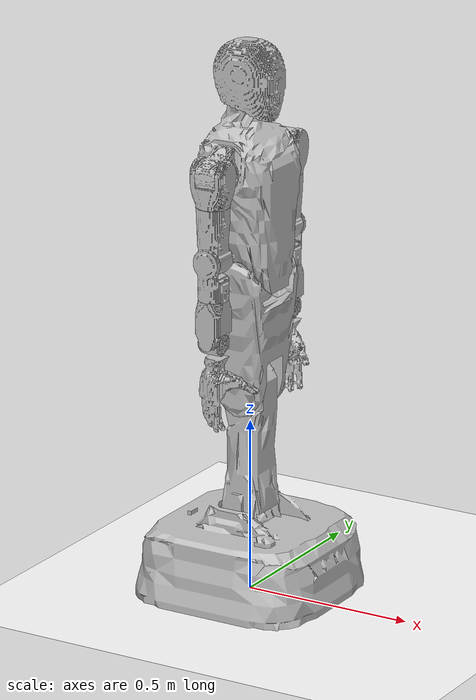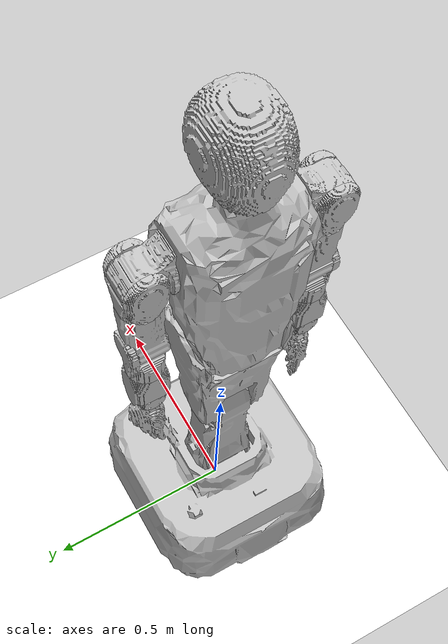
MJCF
<mujoco model="SR1_V1_0">
  <compiler angle="radian"/>

  <asset>
    <mesh name="mbase" content_type="model/stl" file="meshes/2/mbase.stl" scale="0.001 0.001 0.001"/>
    <mesh name="mfl1_hipr" content_type="model/stl" file="meshes/2/mfl1_hipr.stl" scale="0.001 0.001 0.001"/>
    <mesh name="mfr1_hipr" content_type="model/stl" file="meshes/2/mfr1_hipr.stl" scale="0.001 0.001 0.001"/>
    <mesh name="mrl1_hipr" content_type="model/stl" file="meshes/2/mrl1_hipr.stl" scale="0.001 0.001 0.001"/>
    <mesh name="mrr1_hipr" content_type="model/stl" file="meshes/2/mrr1_hipr.stl" scale="0.001 0.001 0.001"/>
    <mesh name="mwaist_base" content_type="model/stl" file="meshes/2/mwaist_base.stl" scale="0.001 0.001 0.001"/>
    <mesh name="mwb1_waistr" content_type="model/stl" file="meshes/2/mwb1_waistr.stl" scale="0.001 0.001 0.001"/>
    <mesh name="mwb2_waisty" content_type="model/stl" file="meshes/2/mwb2_waisty.stl" scale="0.001 0.001 0.001"/>
    <mesh name="mwb3_waistp" content_type="model/stl" file="meshes/2/mwb3_waistp.stl" scale="0.001 0.001 0.001"/>
    <mesh name="mal0_base" content_type="model/stl" file="meshes/2/mal0_base.stl" scale="0.001 0.001 0.001"/>
    <mesh name="mar0_base" content_type="model/stl" file="meshes/2/mar0_base.stl" scale="0.001 0.001 0.001"/>
    <mesh name="mhd_base" content_type="model/stl" file="meshes/2/mhd_base.stl" scale="0.001 0.001 0.001"/>
    <mesh name="mhd1_heady" content_type="model/stl" file="meshes/2/mhd1_heady.stl" scale="0.001 0.001 0.001"/>
    <mesh name="mhd2_headp" content_type="model/stl" file="meshes/2/mhd2_headp.stl" scale="0.001 0.001 0.001"/>
    <mesh name="mar1_shp" content_type="model/stl" file="meshes/2/mar1_shp.stl" scale="0.001 0.001 0.001"/>
    <mesh name="mar2_shr" content_type="model/stl" file="meshes/2/mar2_shr.stl" scale="0.001 0.001 0.001"/>
    <mesh name="mar3_shy" content_type="model/stl" file="meshes/2/mar3_shy.stl" scale="0.001 0.001 0.001"/>
    <mesh name="mar4_elp" content_type="model/stl" file="meshes/2/mar4_elp.stl" scale="0.001 0.001 0.001"/>
    <mesh name="mar5_wry" content_type="model/stl" file="meshes/2/mar5_wry.stl" scale="0.001 0.001 0.001"/>
    <mesh name="mar6_wrp" content_type="model/stl" file="meshes/2/mar6_wrp.stl" scale="0.001 0.001 0.001"/>
    <mesh name="mar7_wrr" content_type="model/stl" file="meshes/2/mar7_wrr.stl" scale="0.001 0.001 0.001"/>
    <mesh name="mal1_shp" content_type="model/stl" file="meshes/2/mal1_shp.stl" scale="0.001 0.001 0.001"/>
    <mesh name="mal2_shr" content_type="model/stl" file="meshes/2/mal2_shr.stl" scale="0.001 0.001 0.001"/>
    <mesh name="mal3_shy" content_type="model/stl" file="meshes/2/mal3_shy.stl" scale="0.001 0.001 0.001"/>
    <mesh name="mal4_elp" content_type="model/stl" file="meshes/2/mal4_elp.stl" scale="0.001 0.001 0.001"/>
    <mesh name="mal5_way" content_type="model/stl" file="meshes/2/mal5_way.stl" scale="0.001 0.001 0.001"/>
    <mesh name="mal6_wap" content_type="model/stl" file="meshes/2/mal6_wap.stl" scale="0.001 0.001 0.001"/>
    <mesh name="mar7_wlr" content_type="model/stl" file="meshes/2/mar7_wlr.stl" scale="0.001 0.001 0.001"/>
    <mesh name="mrr2_wheel" content_type="model/stl" file="meshes/2/mrr2_wheel.stl" scale="0.001 0.001 0.001"/>
    <mesh name="mrl2_wheel" content_type="model/stl" file="meshes/2/mrl2_wheel.stl" scale="0.001 0.001 0.001"/>
    <mesh name="mfr2_wheel" content_type="model/stl" file="meshes/2/mfr2_wheel.stl" scale="0.001 0.001 0.001"/>
    <mesh name="mfl2_wheel" content_type="model/stl" file="meshes/2/mfl2_wheel.stl" scale="0.001 0.001 0.001"/>
  </asset>

  <worldbody>
    <body name="MBASE" pos="0 0 0">
      <freejoint name="root_free"/>
      <inertial pos="0 0 0.4" mass="20" diaginertia="0.5 0.5 0.5"/>
    <geom type="mesh" contype="0" conaffinity="0" group="1" density="0" rgba="0.752941 0.752941 0.752941 1" mesh="mbase"/>
    <geom type="mesh" rgba="0.752941 0.752941 0.752941 1" mesh="mbase"/>
    <geom pos="0.17 0.165 0.078" quat="1 0 0 0" type="mesh" contype="0" conaffinity="0" group="1" density="0" rgba="0.752941 0.752941 0.752941 1" mesh="mfl1_hipr"/>
    <geom pos="0.17 0.165 0.078" quat="1 0 0 0" type="mesh" rgba="0.752941 0.752941 0.752941 1" mesh="mfl1_hipr"/>
    <geom pos="0.17 0.1167 -0.009" quat="1 0 0 0" type="mesh" contype="0" conaffinity="0" group="1" density="0" rgba="0.752941 0.752941 0.752941 1" mesh="mfl2_wheel"/>
    <geom pos="0.17 0.1167 -0.009" quat="1 0 0 0" type="mesh" rgba="0.752941 0.752941 0.752941 1" mesh="mfl2_wheel"/>
    <geom pos="0.17 -0.165 0.078" quat="1 0 0 0" type="mesh" contype="0" conaffinity="0" group="1" density="0" rgba="0.752941 0.752941 0.752941 1" mesh="mfr1_hipr"/>
    <geom pos="0.17 -0.165 0.078" quat="1 0 0 0" type="mesh" rgba="0.752941 0.752941 0.752941 1" mesh="mfr1_hipr"/>
    <geom pos="0.17 -0.1167 -0.009" quat="1 0 0 0" type="mesh" contype="0" conaffinity="0" group="1" density="0" rgba="0.752941 0.752941 0.752941 1" mesh="mfr2_wheel"/>
    <geom pos="0.17 -0.1167 -0.009" quat="1 0 0 0" type="mesh" rgba="0.752941 0.752941 0.752941 1" mesh="mfr2_wheel"/>
    <geom pos="-0.17 0.165 0.078" quat="1 0 0 0" type="mesh" contype="0" conaffinity="0" group="1" density="0" rgba="0.752941 0.752941 0.752941 1" mesh="mrl1_hipr"/>
    <geom pos="-0.17 0.165 0.078" quat="1 0 0 0" type="mesh" rgba="0.752941 0.752941 0.752941 1" mesh="mrl1_hipr"/>
    <geom pos="-0.17 0.1167 -0.009" quat="1 0 0 0" type="mesh" contype="0" conaffinity="0" group="1" density="0" rgba="0.752941 0.752941 0.752941 1" mesh="mrl2_wheel"/>
    <geom pos="-0.17 0.1167 -0.009" quat="1 0 0 0" type="mesh" rgba="0.752941 0.752941 0.752941 1" mesh="mrl2_wheel"/>
    <geom pos="-0.17 -0.165 0.078" quat="1 0 0 0" type="mesh" contype="0" conaffinity="0" group="1" density="0" rgba="0.752941 0.752941 0.752941 1" mesh="mrr1_hipr"/>
    <geom pos="-0.17 -0.165 0.078" quat="1 0 0 0" type="mesh" rgba="0.752941 0.752941 0.752941 1" mesh="mrr1_hipr"/>
    <geom pos="-0.17 -0.1167 -0.009" quat="1 0 0 0" type="mesh" contype="0" conaffinity="0" group="1" density="0" rgba="0.752941 0.752941 0.752941 1" mesh="mrr2_wheel"/>
    <geom pos="-0.17 -0.1167 -0.009" quat="1 0 0 0" type="mesh" rgba="0.752941 0.752941 0.752941 1" mesh="mrr2_wheel"/>
    <geom pos="0 0 0.125" quat="1 0 0 0" type="mesh" contype="0" conaffinity="0" group="1" density="0" rgba="0.752941 0.752941 0.752941 1" mesh="mwaist_base"/>
    <geom pos="0 0 0.125" quat="1 0 0 0" type="mesh" rgba="0.752941 0.752941 0.752941 1" mesh="mwaist_base"/>
    <geom pos="0 -0.05475 0.19" type="mesh" contype="0" conaffinity="0" group="1" density="0" rgba="0.752941 0.752941 0.752941 1" mesh="mwb1_waistr"/>
    <geom pos="0 -0.05475 0.19" type="mesh" rgba="0.752941 0.752941 0.752941 1" mesh="mwb1_waistr"/>
    <geom pos="1e-05 -0.05475 0.6" type="mesh" contype="0" conaffinity="0" group="1" density="0" rgba="0.752941 0.752941 0.752941 1" mesh="mwb2_waisty"/>
    <geom pos="1e-05 -0.05475 0.6" type="mesh" rgba="0.752941 0.752941 0.752941 1" mesh="mwb2_waisty"/>
    <geom pos="0.03001 -0.05475 0.92" type="mesh" contype="0" conaffinity="0" group="1" density="0" rgba="0.752941 0.752941 0.752941 1" mesh="mwb3_waistp"/>
    <geom pos="0.03001 -0.05475 0.92" type="mesh" rgba="0.752941 0.752941 0.752941 1" mesh="mwb3_waistp"/>
    <geom pos="0 0.08 1.245" quat="1 0 0 0" type="mesh" contype="0" conaffinity="0" group="1" density="0" rgba="0.752941 0.752941 0.752941 1" mesh="mal0_base"/>
    <geom pos="0 0.08 1.245" quat="1 0 0 0" type="mesh" rgba="0.752941 0.752941 0.752941 1" mesh="mal0_base"/>
    <geom pos="0 -0.08 1.245" quat="1 0 0 -1.5e-07" type="mesh" contype="0" conaffinity="0" group="1" density="0" rgba="0.752941 0.752941 0.752941 1" mesh="mar0_base"/>
    <geom pos="0 -0.08 1.245" quat="1 0 0 -1.5e-07" type="mesh" rgba="0.752941 0.752941 0.752941 1" mesh="mar0_base"/>
    <geom pos="-0.0309821 0 1.325" quat="1 0 0 0" type="mesh" contype="0" conaffinity="0" group="1" density="0" rgba="0.752941 0.752941 0.752941 1" mesh="mhd_base"/>
    <geom pos="-0.0309821 0 1.325" quat="1 0 0 0" type="mesh" rgba="0.752941 0.752941 0.752941 1" mesh="mhd_base"/>
    <geom pos="-0.0189821 0 1.4167" quat="1 0 0 0" type="mesh" contype="0" conaffinity="0" group="1" density="0" rgba="0.752941 0.752941 0.752941 1" mesh="mhd1_heady"/>
    <geom pos="-0.0189821 0 1.4167" quat="1 0 0 0" type="mesh" rgba="0.752941 0.752941 0.752941 1" mesh="mhd1_heady"/>
    <geom pos="-0.0309821 0 1.43695" quat="1 0 0 0" type="mesh" contype="0" conaffinity="0" group="1" density="0" rgba="0.752941 0.752941 0.752941 1" mesh="mhd2_headp"/>
    <body name="L_L1_shp" pos="0 0.135196 1.2508" quat="0.99863 0.052336 0 0">
      <inertial pos="-0.0045769 0.0533206 0.0011488" quat="0.776671 0.629703 -0.0153876 0.0044476" mass="0.828672" diaginertia="0.000794628 0.000708076 0.000589596"/>
      <joint name="L_J1_shp" pos="0 0 0" axis="0 1 0" range="-2.0 1.39" actuatorfrcrange="-97 97"/>
      <geom type="mesh" contype="0" conaffinity="0" group="1" density="0" rgba="0.752941 0.752941 0.752941 1" mesh="mal1_shp"/>
      <geom type="mesh" rgba="0.752941 0.752941 0.752941 1" mesh="mal1_shp"/>
      <body name="L_L2_shr" pos="-0.035 0.05825 0" quat="0.99863 -0.052336 0 0">
        <inertial pos="0.0224756 0.000112 -0.0400918" quat="0.699362 -0.0843209 -0.088243 0.704269" mass="0.231063" diaginertia="0.000529012 0.000407889 0.000353399"/>
        <joint name="L_J2_shr" pos="0 0 0" axis="-1 0 0" range="-2.35 0.01" actuatorfrcrange="-97 97"/>
        <geom type="mesh" contype="0" conaffinity="0" group="1" density="0" rgba="0.752941 0.752941 0.752941 1" mesh="mal2_shr"/>
        <geom type="mesh" rgba="0.752941 0.752941 0.752941 1" mesh="mal2_shr"/>
        <body name="L_L3_shy" pos="0.03675 0 -0.087">
          <inertial pos="-9.49e-05 -0.0023919 -0.0907531" quat="0.99984 -0.0117505 0.000679988 0.0134441" mass="0.988072" diaginertia="0.00402395 0.0039576 0.000614247"/>
          <joint name="L_J3_shy" pos="0 0 0" axis="0 0 -1" range="-2 2" actuatorfrcrange="-27 27"/>
          <geom type="mesh" contype="0" conaffinity="0" group="1" density="0" rgba="0.752941 0.752941 0.752941 1" mesh="mal3_shy"/>
          <geom type="mesh" rgba="0.752941 0.752941 0.752941 1" mesh="mal3_shy"/>
          <body name="L_L4_elp" pos="0 0.028125 -0.15225">
            <inertial pos="-6e-07 -0.0246556 -0.0733258" quat="0.701783 -0.144216 0.140351 0.683377" mass="0.514429" diaginertia="0.000602954 0.000599498 0.000259048"/>
            <joint name="L_J4_elp" pos="0 0 0" axis="0 1 0" range="-1.83 0.73" actuatorfrcrange="-27 27"/>
            <geom type="mesh" contype="0" conaffinity="0" group="1" density="0" rgba="0.752941 0.752941 0.752941 1" mesh="mal4_elp"/>
            <geom type="mesh" rgba="0.752941 0.752941 0.752941 1" mesh="mal4_elp"/>
            <body name="L_L5_wry" pos="0 -0.028125 -0.11125">
              <inertial pos="-1.4e-06 0.0025328 -0.0531692" quat="0.978813 -0.204757 0 0" mass="0.608088" diaginertia="0.000728 0.000578038 0.000479462"/>
              <joint name="L_J5_wry" pos="0 0 0" axis="0 0 -1" range="-1.98 1.98" actuatorfrcrange="-27 27"/>
              <geom type="mesh" contype="0" conaffinity="0" group="1" density="0" rgba="0.752941 0.752941 0.752941 1" mesh="mal5_way"/>
              <geom type="mesh" rgba="0.752941 0.752941 0.752941 1" mesh="mal5_way"/>
              <body name="L_L6_wrp" pos="0 0 -0.123">
        <geom name="L_hand_col" type="sphere" pos="0.009 0 -0.126" size="0.10" contype="1" conaffinity="1" group="3" rgba="1 0 0 0.3"/>
                <inertial pos="-0.0011281 0.0005201 -0.0001618" quat="-0.0137333 0.697013 0.0173806 0.716716" mass="0.473889" diaginertia="0.000269634 0.000260466 0.0002264"/>
                <joint name="L_J6_wrp" pos="0 0 0" axis="0 -1 0" range="-0.52 0.52" actuatorfrcrange="-27 27"/>
                <geom type="mesh" contype="0" conaffinity="0" group="1" density="0" rgba="0.752941 0.752941 0.752941 1" mesh="mal6_wap"/>
                <geom type="mesh" rgba="0.752941 0.752941 0.752941 1" mesh="mal6_wap"/>
                <body name="L_L7_wrr" pos="0.0292999 0 0">
                  <inertial pos="-0.0164556 -0.001538 -0.100407" quat="0.787597 0.0160794 0.025795 0.615441" mass="0.68043" diaginertia="0.00158783 0.00152846 0.000265009"/>
                  <joint name="L_J7_wrr" pos="0 0 0" axis="1 0 0" range="-0.52 0.52" actuatorfrcrange="-27 27"/>
                  <geom type="mesh" contype="0" conaffinity="0" group="1" density="0" rgba="0.752941 0.752941 0.752941 1" mesh="mar7_wlr"/>
                </body>
              </body>
            </body>
          </body>
        </body>
      </body>
    </body>
    <body name="R_L1_shp" pos="-1.64842e-08 -0.134947 1.25078" quat="0.99863 -0.052336 0 0">
      <inertial pos="-0.0045486 -0.0532663 0.0008947" quat="0.623689 0.780886 -0.0175304 0.0303685" mass="0.827227" diaginertia="0.0007933 0.000707628 0.000587172"/>
      <joint name="R_J1_shp" pos="0 0 0" axis="0 -1 0" range="-1.39 2.0" actuatorfrcrange="-97 97"/>
      <geom type="mesh" contype="0" conaffinity="0" group="1" density="0" rgba="0.752941 0.752941 0.752941 1" mesh="mar1_shp"/>
      <geom type="mesh" rgba="0.752941 0.752941 0.752941 1" mesh="mar1_shp"/>
      <body name="R_L2_shr" pos="-0.0365 -0.05825 0" quat="0.99863 0.0523365 0 0">
        <inertial pos="0.0224768 -0.0001935 -0.0400918" quat="0.704934 -0.0878711 -0.0847037 0.698693" mass="0.231062" diaginertia="0.000529014 0.000407886 0.000353401"/>
        <joint name="R_J2_shr" pos="0 0 0" axis="-1 0 0" range="-0.01 2.35" actuatorfrcrange="-97 97"/>
        <geom type="mesh" contype="0" conaffinity="0" group="1" density="0" rgba="0.752941 0.752941 0.752941 1" mesh="mar2_shr"/>
        <geom type="mesh" rgba="0.752941 0.752941 0.752941 1" mesh="mar2_shr"/>
        <body name="R_L3_shy" pos="0.03675 0 -0.087" quat="0.707107 0 0 -0.707107">
          <inertial pos="-0.0021788 -0.0001263 -0.090837" quat="0.719345 0.00705607 0.00816497 0.694569" mass="0.98369" diaginertia="0.00401409 0.00394877 0.000611445"/>
          <joint name="R_J3_shy" pos="0 0 0" axis="0 0 -1" range="-2 2" actuatorfrcrange="-27 27"/>
          <geom type="mesh" contype="0" conaffinity="0" group="1" density="0" rgba="0.752941 0.752941 0.752941 1" mesh="mar3_shy"/>
          <geom type="mesh" rgba="0.752941 0.752941 0.752941 1" mesh="mar3_shy"/>
          <body name="R_L4_elp" pos="0.028125 0 -0.15225" quat="0.707107 0 0 0.707107">
            <inertial pos="6e-07 0.0246556 -0.0733258" quat="0.701783 0.144216 -0.140351 0.683377" mass="0.514429" diaginertia="0.000602954 0.000599498 0.000259048"/>
            <joint name="R_J4_elp" pos="0 0 0" axis="0 -1 0" range="-0.73 1.83" actuatorfrcrange="-27 27"/>
            <geom type="mesh" contype="0" conaffinity="0" group="1" density="0" rgba="0.752941 0.752941 0.752941 1" mesh="mar4_elp"/>
            <geom type="mesh" rgba="0.752941 0.752941 0.752941 1" mesh="mar4_elp"/>
            <body name="R_L5_wry" pos="0 0.028125 -0.11125">
              <inertial pos="-1.4e-06 0.0025328 -0.0531692" quat="0.978813 -0.204757 0 0" mass="0.608088" diaginertia="0.000728 0.000578038 0.000479462"/>
              <joint name="R_J5_wry" pos="0 0 0" axis="0 0 -1" range="-1.98 1.98" actuatorfrcrange="-27 27"/>
              <geom type="mesh" contype="0" conaffinity="0" group="1" density="0" rgba="0.752941 0.752941 0.752941 1" mesh="mar5_wry"/>
              <geom type="mesh" rgba="0.752941 0.752941 0.752941 1" mesh="mar5_wry"/>
              <body name="R_L6_wrp" pos="0 0 -0.123">
        <geom name="R_hand_col" type="sphere" pos="0.009 0 -0.126" size="0.10" contype="1" conaffinity="1" group="3" rgba="1 0 0 0.3"/>
                <inertial pos="-0.0011281 0.0005201 -0.0001618" quat="-0.0137333 0.697013 0.0173806 0.716716" mass="0.473889" diaginertia="0.000269634 0.000260466 0.0002264"/>
                <joint name="R_J6_wrp" pos="0 0 0" axis="0 -1 0" range="-0.52 0.52" actuatorfrcrange="-27 27"/>
                <geom type="mesh" contype="0" conaffinity="0" group="1" density="0" rgba="0.752941 0.752941 0.752941 1" mesh="mar6_wrp"/>
                <geom type="mesh" rgba="0.752941 0.752941 0.752941 1" mesh="mar6_wrp"/>
                <body name="R_L7_wrr" pos="0.0292999 0 0" quat="0.707107 0 0 0.707107">
                  <inertial pos="0.0028307 0.0154785 -0.112015" quat="0.983446 0.0468191 -0.00619709 0.174937" mass="0.68043" diaginertia="0.00230402 0.00220396 0.000338815"/>
                  <joint name="R_J7_wrr" pos="0 0 0" axis="0 -1 0" range="-0.52 0.52" actuatorfrcrange="-27 27"/>
                  <geom type="mesh" contype="0" conaffinity="0" group="1" density="0" rgba="0.752941 0.752941 0.752941 1" mesh="mar7_wrr"/>
                </body>
              </body>
            </body>
          </body>
        </body>
      </body>
    </body>
      </body>
  </worldbody>

  <statistic center="0 0 1.0" extent="1.2"/>
  <visual>
    <headlight diffuse="0.6 0.6 0.6" ambient="0.1 0.1 0.1" specular="0.9 0.9 0.9"/>
    <rgba haze="0.15 0.25 0.35 1"/>
    <global azimuth="-140" elevation="-20" offwidth="2080" offheight="1170"/>
  </visual>
  <asset>
    <texture type="skybox" builtin="gradient" rgb1=".4 .5 .6" rgb2="0 0 0" width="100" height="100"/>
    <texture type="2d" name="groundplane" builtin="checker" mark="edge" rgb1="1 1 1" rgb2="1 1 1"
      markrgb="0 0 0" width="300" height="300"/>
    <material name="groundplane" texture="groundplane" texuniform="true" texrepeat="5 5" reflectance="0"/>
  </asset>
  <worldbody>
    <geom name="floor" size="0 0 0.01" type="plane" material="groundplane" contype="1" conaffinity="0"
      priority="1" friction="0.6" condim="3"/>
    <light diffuse=".5 .5 .5" pos="-3 -3 5" dir="3 3 -5" castshadow="true"/>
  </worldbody>
</mujoco>
